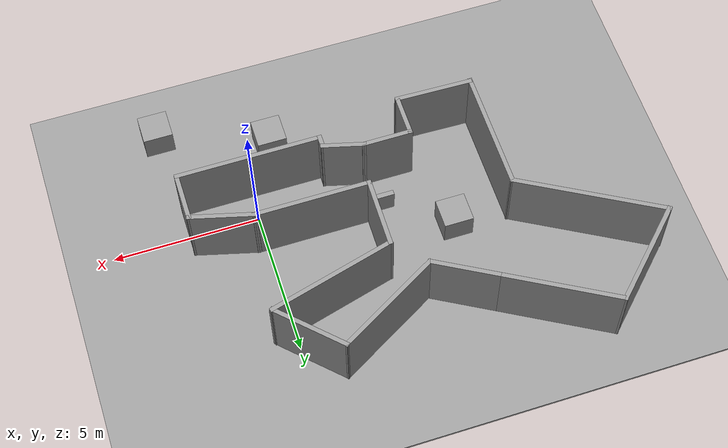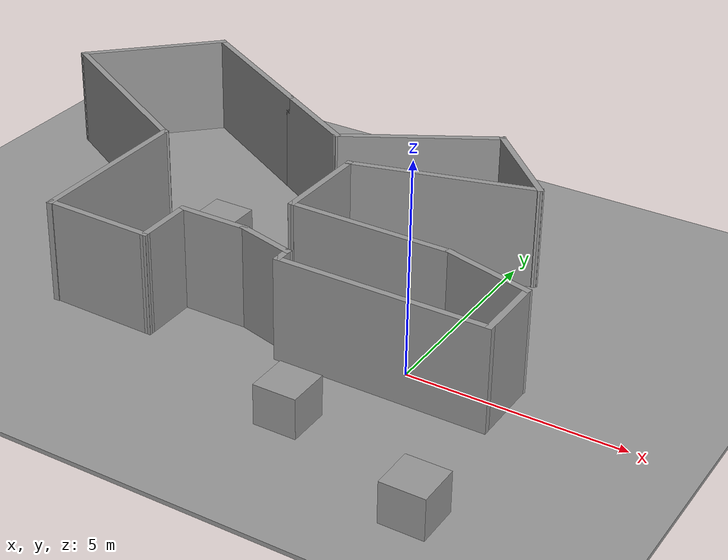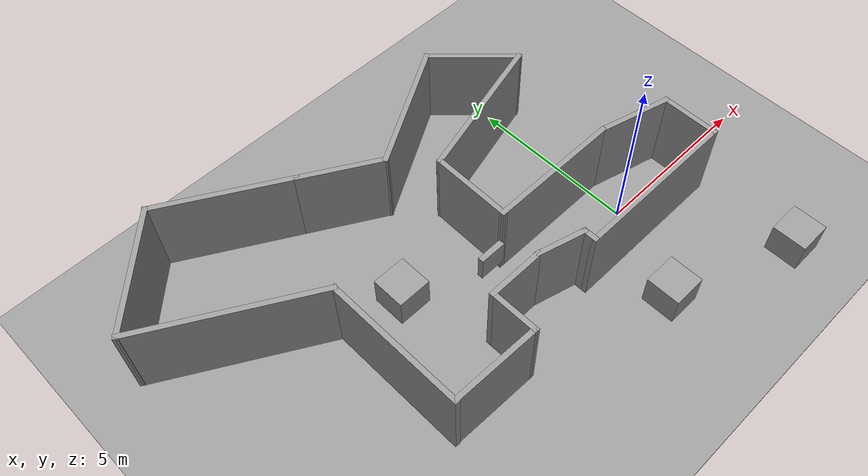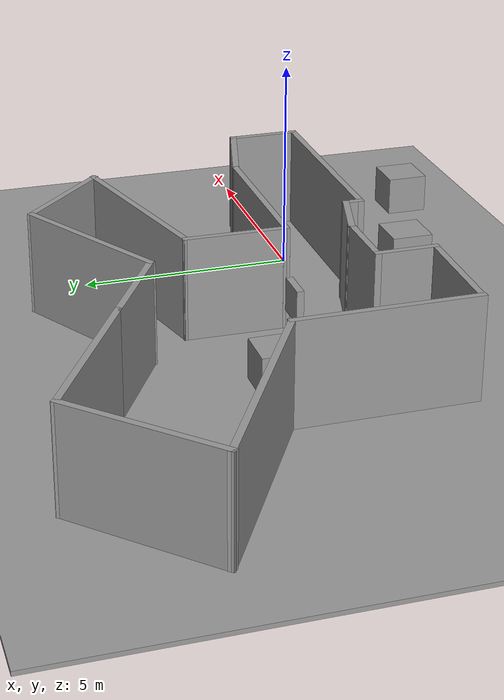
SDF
<sdf version="1.7">
 <world name="default">
  <light name="sun" type="directional">
   <pose>0 0 10 0 -0 0</pose>
   <diffuse>0.8 0.8 0.8 1</diffuse>
   <specular>0.2 0.2 0.2 1</specular>
   <attenuation>
    <range>1000</range>
    <constant>0.9</constant>
    <linear>0.01</linear>
    <quadratic>0.001</quadratic>
   </attenuation>
   <direction>-0.5 0.1 -0.9</direction>
   <spot><inner_angle>0</inner_angle><outer_angle>0</outer_angle><falloff>0</falloff></spot>
  </light>
  <model name="ground_plane">
   <static>1</static>
   <link name="link">
    <collision name="collision">
     <geometry><plane><normal>0 0 1</normal><size>100 100</size></plane></geometry>
     <surface><friction><ode><mu>100</mu><mu2>50</mu2></ode></friction></surface>
    </collision>
    <visual name="visual">
     <cast_shadows>0</cast_shadows>
     <geometry><plane><normal>0 0 1</normal><size>100 100</size></plane></geometry>
     <material>
      <script><uri>file://media/materials/scripts/gazebo.material</uri><name>Gazebo/Grey</name></script>
     </material>
    </visual>
   </link>
  </model>
  <gravity>0 0 -9.8</gravity>
  <magnetic_field>6e-06 2.3e-05 -4.2e-05</magnetic_field>
  <atmosphere type="adiabatic"/>
  <physics type="ode">
   <max_step_size>0.001</max_step_size>
   <real_time_factor>1</real_time_factor>
   <real_time_update_rate>1000</real_time_update_rate>
  </physics>
  <scene><ambient>0.4 0.4 0.4 1</ambient><background>0.7 0.7 0.7 1</background><shadows>1</shadows></scene>
  <audio><device>default</device></audio>
  <spherical_coordinates>
   <surface_model>EARTH_WGS84</surface_model>
   <latitude_deg>0</latitude_deg>
   <longitude_deg>0</longitude_deg>
   <elevation>0</elevation>
   <heading_deg>0</heading_deg>
  </spherical_coordinates>
  <model name="ground_plane_0">
   <static>1</static>
   <link name="link">
    <collision name="collision">
     <geometry><plane><normal>0 0 1</normal><size>100 100</size></plane></geometry>
     <surface>
      <contact><collide_bitmask>65535</collide_bitmask></contact>
      <friction><ode><mu>100</mu><mu2>50</mu2></ode></friction>
     </surface>
    </collision>
    <visual name="visual">
     <cast_shadows>0</cast_shadows>
     <geometry><plane><normal>0 0 1</normal><size>100 100</size></plane></geometry>
     <material>
      <script><uri>file://media/materials/scripts/gazebo.material</uri><name>Gazebo/Grey</name></script>
     </material>
    </visual>
   </link>
   <pose>-3.77781 1.16516 0 0 -0 0</pose>
  </model>
  <model name="unit_box">
   <pose>2.47999 -4.07031 0.499996 -9e-06 -0 0</pose>
   <link name="link">
    <inertial>
     <mass>1</mass>
     <inertia>
      <ixx>0.166667</ixx>
      <ixy>0</ixy>
      <ixz>0</ixz>
      <iyy>0.166667</iyy>
      <iyz>0</iyz>
      <izz>0.166667</izz>
     </inertia>
    </inertial>
    <collision name="collision"><geometry><box><size>1 1 1</size></box></geometry></collision>
    <visual name="visual">
     <geometry><box><size>1 1 1</size></box></geometry>
     <material>
      <script><name>Gazebo/Grey</name><uri>file://media/materials/scripts/gazebo.material</uri></script>
     </material>
    </visual>
   </link>
  </model>
  <model name="unit_box_0">
   <pose>-1.17181 -2.72126 0.5 0 -0 0</pose>
   <link name="link">
    <inertial>
     <mass>1</mass>
     <inertia>
      <ixx>0.166667</ixx>
      <ixy>0</ixy>
      <ixz>0</ixz>
      <iyy>0.166667</iyy>
      <iyz>0</iyz>
      <izz>0.166667</izz>
     </inertia>
    </inertial>
    <collision name="collision"><geometry><box><size>1 1 1</size></box></geometry></collision>
    <visual name="visual">
     <geometry><box><size>1 1 1</size></box></geometry>
     <material>
      <script><name>Gazebo/Grey</name><uri>file://media/materials/scripts/gazebo.material</uri></script>
     </material>
    </visual>
   </link>
  </model>
  <model name="Untitled">
   <pose>-5.05391 2.99844 0 0 -0 0</pose>
   <link name="Wall_0">
    <collision name="Wall_0_Collision">
     <geometry><box><size>4 0.15 2.5</size></box></geometry>
     <pose>0 0 1.25 0 -0 0</pose>
    </collision>
    <visual name="Wall_0_Visual">
     <pose>0 0 1.25 0 -0 0</pose>
     <geometry><box><size>4 0.15 2.5</size></box></geometry>
     <material>
      <script><uri>file://media/materials/scripts/gazebo.material</uri><name>Gazebo/Grey</name></script>
      <ambient>1 1 1 1</ambient>
     </material>
     <meta><layer>0</layer></meta>
    </visual>
    <pose>3.41891 -1.83845 0 0 -0 0</pose>
   </link>
   <link name="Wall_1">
    <collision name="Wall_1_Collision">
     <geometry><box><size>2.25 0.15 2.5</size></box></geometry>
     <pose>0 0 1.25 0 -0 0</pose>
    </collision>
    <visual name="Wall_1_Visual">
     <pose>0 0 1.25 0 -0 0</pose>
     <geometry><box><size>2.25 0.15 2.5</size></box></geometry>
     <material>
      <script><uri>file://media/materials/scripts/gazebo.material</uri><name>Gazebo/Grey</name></script>
      <ambient>1 1 1 1</ambient>
     </material>
     <meta><layer>0</layer></meta>
    </visual>
    <pose>6.35813 -2.11021 0 0 -0 -0.261799</pose>
   </link>
   <link name="Wall_12">
    <collision name="Wall_12_Collision">
     <geometry><box><size>5.25 0.15 2.5</size></box></geometry>
     <pose>0 0 1.25 0 -0 0</pose>
    </collision>
    <visual name="Wall_12_Visual">
     <pose>0 0 1.25 0 -0 0</pose>
     <geometry><box><size>5.25 0.15 2.5</size></box></geometry>
     <material>
      <script><uri>file://media/materials/scripts/gazebo.material</uri><name>Gazebo/Grey</name></script>
      <ambient>1 1 1 1</ambient>
     </material>
     <meta><layer>0</layer></meta>
    </visual>
    <pose>-5.14978 0.782668 0 0 -0 2.61799</pose>
   </link>
   <link name="Wall_13">
    <collision name="Wall_13_Collision">
     <geometry><box><size>3.75 0.15 2.5</size></box></geometry>
     <pose>0 0 1.25 0 -0 0</pose>
    </collision>
    <visual name="Wall_13_Visual">
     <pose>0 0 1.25 0 -0 0</pose>
     <geometry><box><size>3.75 0.15 2.5</size></box></geometry>
     <material>
      <script><uri>file://media/materials/scripts/gazebo.material</uri><name>Gazebo/Grey</name></script>
      <ambient>1 1 1 1</ambient>
     </material>
     <meta><layer>0</layer></meta>
    </visual>
    <pose>-6.08535 3.33046 0 0 -0 0.785398</pose>
   </link>
   <link name="Wall_14">
    <collision name="Wall_14_Collision">
     <geometry><box><size>4 0.15 2.5</size></box></geometry>
     <pose>0 0 1.25 0 -0 0</pose>
    </collision>
    <visual name="Wall_14_Visual">
     <pose>0 0 1.25 0 -0 0</pose>
     <geometry><box><size>4 0.15 2.5</size></box></geometry>
     <material>
      <script><uri>file://media/materials/scripts/gazebo.material</uri><name>Gazebo/Grey</name></script>
      <ambient>1 1 1 1</ambient>
     </material>
     <meta><layer>0</layer></meta>
    </visual>
    <pose>-3.14546 3.64075 0 0 -0 -0.523599</pose>
   </link>
   <link name="Wall_15">
    <collision name="Wall_15_Collision">
     <geometry><box><size>2.5 0.15 2.5</size></box></geometry>
     <pose>0 0 1.25 0 -0 0</pose>
    </collision>
    <visual name="Wall_15_Visual">
     <pose>0 0 1.25 0 -0 0</pose>
     <geometry><box><size>2.5 0.15 2.5</size></box></geometry>
     <material>
      <script><uri>file://media/materials/scripts/gazebo.material</uri><name>Gazebo/Grey</name></script>
      <ambient>1 1 1 1</ambient>
     </material>
     <meta><layer>0</layer></meta>
    </visual>
    <pose>-0.460784 2.09075 0 0 -0 -0.523599</pose>
   </link>
   <link name="Wall_16">
    <collision name="Wall_16_Collision">
     <geometry><box><size>4 0.15 2.5</size></box></geometry>
     <pose>0 0 1.25 0 -0 0</pose>
    </collision>
    <visual name="Wall_16_Visual">
     <pose>0 0 1.25 0 -0 0</pose>
     <geometry><box><size>4 0.15 2.5</size></box></geometry>
     <material>
      <script><uri>file://media/materials/scripts/gazebo.material</uri><name>Gazebo/Grey</name></script>
      <ambient>1 1 1 1</ambient>
     </material>
     <meta><layer>0</layer></meta>
    </visual>
    <pose>2.22389 2.46575 0 0 -0 0.523599</pose>
   </link>
   <link name="Wall_17">
    <collision name="Wall_17_Collision">
     <geometry><box><size>2.75 0.15 2.5</size></box></geometry>
     <pose>0 0 1.25 0 -0 0</pose>
    </collision>
    <visual name="Wall_17_Visual">
     <pose>0 0 1.25 0 -0 0</pose>
     <geometry><box><size>2.75 0.15 2.5</size></box></geometry>
     <material>
      <script><uri>file://media/materials/scripts/gazebo.material</uri><name>Gazebo/Grey</name></script>
      <ambient>1 1 1 1</ambient>
     </material>
     <meta><layer>0</layer></meta>
    </visual>
    <pose>4.81023 2.50901 0 0 -0 -0.785398</pose>
   </link>
   <link name="Wall_18">
    <collision name="Wall_18_Collision">
     <geometry><box><size>4.5 0.15 2.5</size></box></geometry>
     <pose>0 0 1.25 0 -0 0</pose>
    </collision>
    <visual name="Wall_18_Visual">
     <pose>0 0 1.25 0 -0 0</pose>
     <geometry><box><size>4.5 0.15 2.5</size></box></geometry>
     <material>
      <script><uri>file://media/materials/scripts/gazebo.material</uri><name>Gazebo/Grey</name></script>
      <ambient>1 1 1 1</ambient>
     </material>
     <meta><layer>0</layer></meta>
    </visual>
    <pose>3.62858 1.02684 0 0 -0 -2.87979</pose>
   </link>
   <link name="Wall_19">
    <collision name="Wall_19_Collision">
     <geometry><box><size>2.45261 0.15 2.5</size></box></geometry>
     <pose>0 0 1.25 0 -0 0</pose>
    </collision>
    <visual name="Wall_19_Visual">
     <pose>0 0 1.25 0 -0 0</pose>
     <geometry><box><size>2.45261 0.15 2.5</size></box></geometry>
     <material>
      <script><uri>file://media/materials/scripts/gazebo.material</uri><name>Gazebo/Grey</name></script>
      <ambient>1 1 1 1</ambient>
     </material>
     <meta><layer>0</layer></meta>
    </visual>
    <pose>1.5108 -0.687266 0 0 -0 -1.58547</pose>
   </link>
   <link name="Wall_2">
    <collision name="Wall_2_Collision">
     <geometry><box><size>1.75 0.15 2.5</size></box></geometry>
     <pose>0 0 1.25 0 -0 0</pose>
    </collision>
    <visual name="Wall_2_Visual">
     <pose>0 0 1.25 0 -0 0</pose>
     <geometry><box><size>1.75 0.15 2.5</size></box></geometry>
     <material>
      <script><uri>file://media/materials/scripts/gazebo.material</uri><name>Gazebo/Grey</name></script>
      <ambient>1 1 1 1</ambient>
     </material>
     <meta><layer>0</layer></meta>
    </visual>
    <pose>7.37236 -3.18196 0 0 -0 -1.5708</pose>
   </link>
   <link name="Wall_3">
    <collision name="Wall_3_Collision">
     <geometry><box><size>5 0.15 2.5</size></box></geometry>
     <pose>0 0 1.25 0 -0 0</pose>
    </collision>
    <visual name="Wall_3_Visual">
     <pose>0 0 1.25 0 -0 0</pose>
     <geometry><box><size>5 0.15 2.5</size></box></geometry>
     <material>
      <script><uri>file://media/materials/scripts/gazebo.material</uri><name>Gazebo/Grey</name></script>
      <ambient>1 1 1 1</ambient>
     </material>
     <meta><layer>0</layer></meta>
    </visual>
    <pose>4.94736 -3.98197 0 0 -0 3.14159</pose>
   </link>
   <link name="Wall_4">
    <collision name="Wall_4_Collision">
     <geometry><box><size>0.5 0.15 2.5</size></box></geometry>
     <pose>0 0 1.25 0 -0 0</pose>
    </collision>
    <visual name="Wall_4_Visual">
     <pose>0 0 1.25 0 -0 0</pose>
     <geometry><box><size>0.5 0.15 2.5</size></box></geometry>
     <material>
      <script><uri>file://media/materials/scripts/gazebo.material</uri><name>Gazebo/Grey</name></script>
      <ambient>1 1 1 1</ambient>
     </material>
     <meta><layer>0</layer></meta>
    </visual>
    <pose>2.52236 -3.80696 0 0 -0 1.5708</pose>
   </link>
   <link name="Wall_5">
    <collision name="Wall_5_Collision">
     <geometry><box><size>1.5 0.15 2.5</size></box></geometry>
     <pose>0 0 1.25 0 -0 0</pose>
    </collision>
    <visual name="Wall_5_Visual">
     <pose>0 0 1.25 0 -0 0</pose>
     <geometry><box><size>1.5 0.15 2.5</size></box></geometry>
     <material>
      <script><uri>file://media/materials/scripts/gazebo.material</uri><name>Gazebo/Grey</name></script>
      <ambient>1 1 1 1</ambient>
     </material>
     <meta><layer>0</layer></meta>
    </visual>
    <pose>1.87036 -3.45726 0 0 -0 2.87979</pose>
   </link>
   <link name="Wall_6">
    <collision name="Wall_6_Collision">
     <geometry><box><size>1.75 0.15 2.5</size></box></geometry>
     <pose>0 0 1.25 0 -0 0</pose>
    </collision>
    <visual name="Wall_6_Visual">
     <pose>0 0 1.25 0 -0 0</pose>
     <geometry><box><size>1.75 0.15 2.5</size></box></geometry>
     <material>
      <script><uri>file://media/materials/scripts/gazebo.material</uri><name>Gazebo/Grey</name></script>
      <ambient>1 1 1 1</ambient>
     </material>
     <meta><layer>0</layer></meta>
    </visual>
    <pose>0.418356 -3.28256 0 0 -0 3.14159</pose>
   </link>
   <link name="Wall_7">
    <collision name="Wall_7_Collision">
     <geometry><box><size>1.5 0.15 2.5</size></box></geometry>
     <pose>0 0 1.25 0 -0 0</pose>
    </collision>
    <visual name="Wall_7_Visual">
     <pose>0 0 1.25 0 -0 0</pose>
     <geometry><box><size>1.5 0.15 2.5</size></box></geometry>
     <material>
      <script><uri>file://media/materials/scripts/gazebo.material</uri><name>Gazebo/Grey</name></script>
      <ambient>1 1 1 1</ambient>
     </material>
     <meta><layer>0</layer></meta>
    </visual>
    <pose>-0.381644 -3.95756 0 0 -0 -1.5708</pose>
   </link>
   <link name="Wall_8">
    <collision name="Wall_8_Collision">
     <geometry><box><size>2.69038 0.15 2.5</size></box></geometry>
     <pose>0 0 1.25 0 -0 0</pose>
    </collision>
    <visual name="Wall_8_Visual">
     <pose>0 0 1.25 0 -0 0</pose>
     <geometry><box><size>2.69038 0.15 2.5</size></box></geometry>
     <material>
      <script><uri>file://media/materials/scripts/gazebo.material</uri><name>Gazebo/Grey</name></script>
      <ambient>1 1 1 1</ambient>
     </material>
     <meta><layer>0</layer></meta>
    </visual>
    <pose>-1.65147 -4.60239 0 0 -0 3.11784</pose>
   </link>
   <link name="Wall_9">
    <collision name="Wall_9_Collision">
     <geometry><box><size>4.25 0.15 2.5</size></box></geometry>
     <pose>0 0 1.25 0 -0 0</pose>
    </collision>
    <visual name="Wall_9_Visual">
     <pose>0 0 1.25 0 -0 0</pose>
     <geometry><box><size>4.25 0.15 2.5</size></box></geometry>
     <material>
      <script><uri>file://media/materials/scripts/gazebo.material</uri><name>Gazebo/Grey</name></script>
      <ambient>1 1 1 1</ambient>
     </material>
     <meta><layer>0</layer></meta>
    </visual>
    <pose>-2.94142 -2.54233 0 0 -0 1.5708</pose>
   </link>
   <link name="Window_0">
    <collision name="Window_0_Collision">
     <geometry><box><size>0.8 0.17 0.8</size></box></geometry>
     <pose>0 0 0.4 0 -0 0</pose>
    </collision>
    <visual name="Window_0_Visual">
     <pose>0 0 0.4 0 -0 0</pose>
     <geometry><box><size>0.8 0.17 0.8</size></box></geometry>
     <material>
      <script><uri>file://media/materials/scripts/gazebo.material</uri><name>Gazebo/Grey</name></script>
     </material>
    </visual>
    <pose>1.03391 -1.90844 0.5 0 -0 0</pose>
   </link>
   <static>1</static>
  </model>
  <model name="unit_box_1">
   <pose>-6.18135 2.19697 0.499999 2e-06 -0 0</pose>
   <link name="link">
    <inertial>
     <mass>1</mass>
     <inertia>
      <ixx>0.166667</ixx>
      <ixy>0</ixy>
      <ixz>0</ixz>
      <iyy>0.166667</iyy>
      <iyz>0</iyz>
      <izz>0.166667</izz>
     </inertia>
    </inertial>
    <collision name="collision"><geometry><box><size>1 1 1</size></box></geometry></collision>
    <visual name="visual">
     <geometry><box><size>1 1 1</size></box></geometry>
     <material>
      <script><name>Gazebo/Grey</name><uri>file://media/materials/scripts/gazebo.material</uri></script>
     </material>
    </visual>
   </link>
  </model>
 </world>
</sdf>
